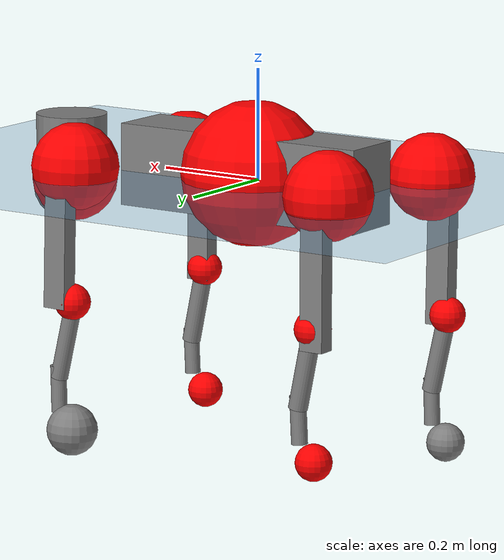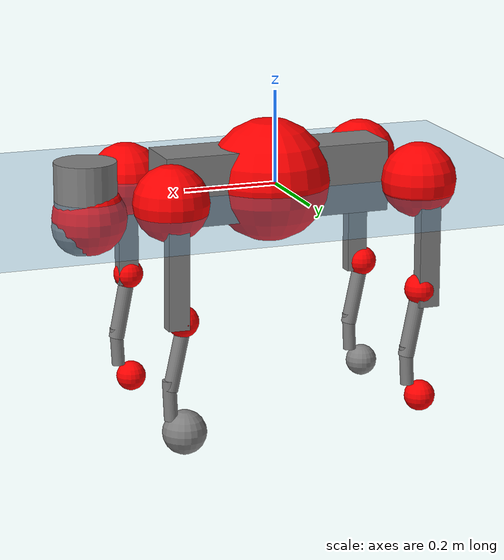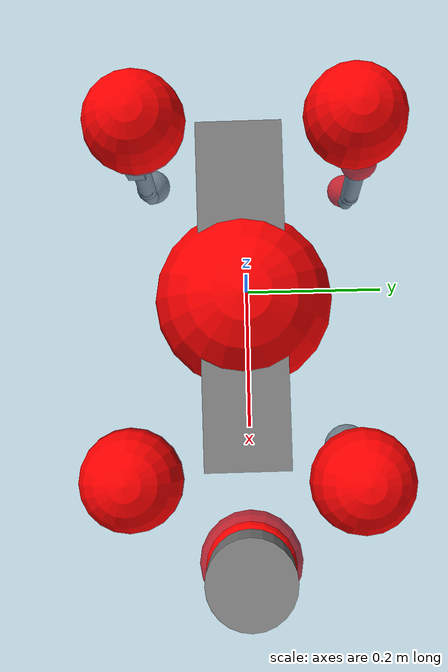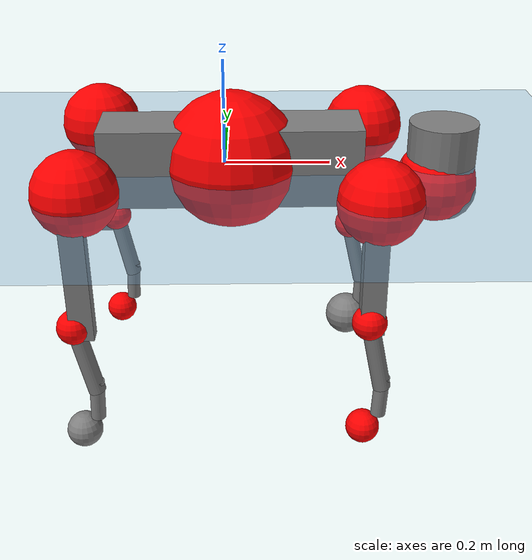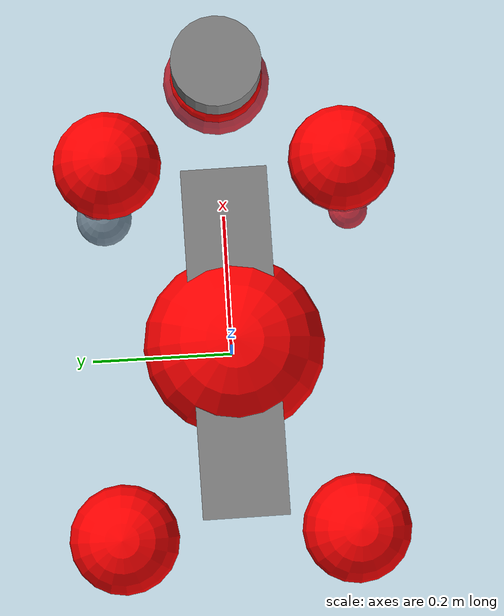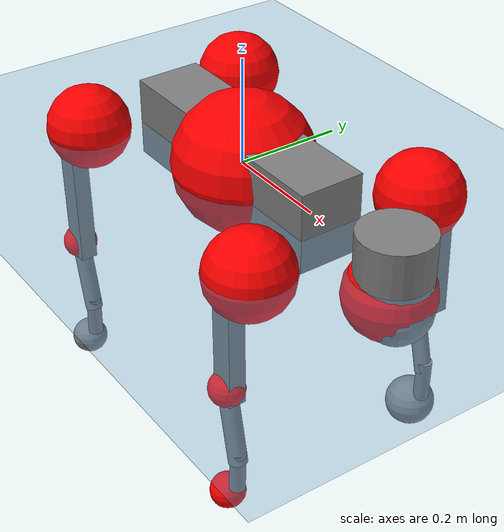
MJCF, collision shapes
<mujoco model="go2">
  <compiler angle="radian" assetdir="assets" balanceinertia="true" inertiafromgeom="false"/>

  <option timestep="0.005" density="1.2" viscosity="2e-05"/>

  <size nkey="1"/>

  <visual>
    <quality shadowsize="8192"/>
    <map shadowclip="0.5"/>
  </visual>

  <default>
    <default class="/">
      <geom contype="0" conaffinity="0" group="1" solref="-1000 -80"/>
      <site size="0.01 0.005 0.005" group="5"/>
      <general forcelimited="true" biastype="affine" gainprm="20" biasprm="0 -20 -0.5"/>
      <default class="go2">
        <joint armature="0.01" damping="0.01" frictionloss="0.2"/>
        <geom condim="1" margin="0.001"/>
        <default class="visual">
          <geom type="mesh" group="2"/>
        </default>
        <default class="collision">
          <geom group="3"/>
          <default class="foot">
            <geom size="0.022 0 0" condim="6" priority="1" friction="0.8 0.02 0.01" solimp="0.015 1 0.022"/>
          </default>
        </default>
        <default class="reward_collision_sphere">
          <geom group="5" rgba="1 0 0 1"/>
        </default>
      </default>
    </default>
  </default>

  <asset>
    <texture type="skybox" colorspace="auto" name="//unnamed_texture_0" builtin="gradient" rgb1="0.95 0.95 0.95" rgb2="0.95 0.95 0.95" width="100" height="600"/>
    <texture type="2d" colorspace="auto" name="texplane" builtin="checker" rgb1="0.345 0.575 0.748" rgb2="0.345 0.575 0.748" markrgb="1 1 1" width="512" height="512"/>
    <material name="MatPlane" class="/" texture="texplane" texuniform="true" texrepeat="2 2" specular="0.9"/>
    <material name="metal" class="/" rgba="0.9 0.95 0.95 1"/>
    <material name="black" class="/" rgba="0 0 0 1"/>
    <material name="white" class="/"/>
    <material name="gray" class="/" rgba="0.671705 0.692426 0.77427 1"/>
    <mesh name="base_0" class="/" file="base_0.obj"/>
    <mesh name="base_1" class="/" file="base_1.obj"/>
    <mesh name="base_2" class="/" file="base_2.obj"/>
    <mesh name="base_3" class="/" file="base_3.obj"/>
    <mesh name="base_4" class="/" file="base_4.obj"/>
    <mesh name="hip_0" class="/" file="hip_0.obj"/>
    <mesh name="hip_1" class="/" file="hip_1.obj"/>
    <mesh name="thigh_0" class="/" file="thigh_0.obj"/>
    <mesh name="thigh_1" class="/" file="thigh_1.obj"/>
    <mesh name="thigh_mirror_0" class="/" file="thigh_mirror_0.obj"/>
    <mesh name="thigh_mirror_1" class="/" file="thigh_mirror_1.obj"/>
    <mesh name="calf_0" class="/" file="calf_0.obj"/>
    <mesh name="calf_1" class="/" file="calf_1.obj"/>
    <mesh name="calf_mirror_0" class="/" file="calf_mirror_0.obj"/>
    <mesh name="calf_mirror_1" class="/" file="calf_mirror_1.obj"/>
    <mesh name="foot" class="/" file="foot.obj"/>
  </asset>

  <worldbody>
    <geom name="floor" class="/" size="100 100 0.125" type="plane" group="0" material="MatPlane"/>
    <light name="toplight_shadow" class="/" pos="0 0 5" dir="0.0990148 0.0990148 -0.990148" type="directional" ambient="0.04 0.04 0.04" diffuse="0.55 0.55 0.55" specular="0.12 0.12 0.12"/>
    <light name="toplight_fill" class="/" pos="0 0 5" dir="0.0990148 0.0990148 -0.990148" type="directional" castshadow="false" ambient="0.04 0.04 0.04" diffuse="0.3 0.3 0.3" specular="0.08 0.08 0.08"/>
    <body name="trunk" childclass="go2" pos="0.0123527 -0.00451589 0.0097495" quat="0.999984 0.00374175 -0.000329398 0.00423946">
      <inertial pos="0.0396804 -0.010245 -0.00831688" quat="-0.0121463 0.757469 0.0164847 0.65255" mass="13.8216" diaginertia="0.427103 0.548597 0.0284614"/>
      <joint name="//unnamed_joint_0" type="free" armature="0" damping="0" frictionloss="0"/>
      <geom name="//unnamed_geom_1" class="visual" material="black" mesh="base_0"/>
      <geom name="//unnamed_geom_2" class="visual" material="black" mesh="base_1"/>
      <geom name="//unnamed_geom_3" class="visual" material="black" mesh="base_2"/>
      <geom name="//unnamed_geom_4" class="visual" material="white" mesh="base_3"/>
      <geom name="//unnamed_geom_5" class="visual" material="gray" mesh="base_4"/>
      <geom name="trunk_1" class="collision" size="0.246139 0.0611748 0.0745875" type="box"/>
      <geom name="trunk_2" class="collision" size="0.0654276 0.0588848" pos="0.401428 0 0.0110333" type="cylinder"/>
      <geom name="trunk_3" class="collision" size="0.0615019" pos="0.412696 0 -0.0661995"/>
      <geom name="//unnamed_geom_9" class="reward_collision_sphere" size="0.130855"/>
      <geom name="//unnamed_geom_10" class="reward_collision_sphere" size="0.0785131" pos="0.394385 0 -0.0496496"/>
      <site name="imu" pos="-0.0878087 0.088082 0.0860057" size="0.0130855"/>
      <camera name="track" pos="0 -2.82763 0" quat="0.707107 0.707107 0 0" mode="trackcom"/>
      <camera name="ego_camera" pos="0.439458 0 0.0496496" quat="-0.5 -0.5 0.5 0.5"/>
      <body name="FL_hip" pos="0.270346 0.0675752 0.00787336" quat="0.999963 0.00591639 -0.00555088 -0.00285457">
        <inertial pos="0.00231466 -4.78146e-05 0.00641934" quat="0.54219 0.501106 0.497671 0.455243" mass="1.22235" diaginertia="0.00391879 0.00268053 0.000551653"/>
        <joint name="FL_hip_joint" pos="0 0 0" axis="0.998673 -0.0473107 -0.0203559" stiffness="0.0262938" range="-1.35735 1.0412" armature="0.00407004" damping="0" frictionloss="0.322935"/>
        <geom name="//unnamed_geom_11" class="visual" material="metal" mesh="hip_0"/>
        <geom name="//unnamed_geom_12" class="visual" material="gray" mesh="hip_1"/>
        <geom name="//unnamed_geom_13" class="collision" size="0.0601934 0.026171" pos="0 0.113105 0" quat="0.707107 0.707107 0 0" type="cylinder"/>
        <geom name="//unnamed_geom_14" class="reward_collision_sphere" size="0.0785131" pos="0 0.0989669 0"/>
        <body name="FL_thigh" pos="0.00120321 0.140659 0.00625016" quat="0.999999 2.61828e-06 -0.00147131 2.05185e-05">
          <inertial pos="-0.0027431 -0.0158857 -0.0184099" quat="0.845408 0.0687653 -0.0319934 0.528709" mass="2.65304" diaginertia="0.0298837 0.0359798 0.00129586"/>
          <joint name="FL_thigh_joint" pos="0 0 0" axis="0.0252935 0.99967 -0.00449918" range="-1.57808 3.15074" armature="0.0200886" damping="0.0975251" frictionloss="0.263383"/>
          <geom name="//unnamed_geom_15" class="visual" material="metal" mesh="thigh_0"/>
          <geom name="//unnamed_geom_16" class="visual" material="gray" mesh="thigh_1"/>
          <geom name="//unnamed_geom_17" class="collision" size="0.139361 0.0160298 0.0222454" pos="0 0 -0.117504" quat="0.707107 0 0.707107 0" type="box"/>
          <body name="FL_calf" pos="-0.0178183 -0.0164389 -0.247061" quat="1 -0.000152981 -0.0002255 -0.000412384">
            <inertial pos="0.0158195 0.0094776 -0.167917" quat="0.71043 0.00220134 -0.00403859 0.703752" mass="0.42638" diaginertia="0.00687001 0.00869524 8.49274e-05"/>
            <joint name="FL_calf_joint" pos="0 0 0" axis="0.00846378 0.99996 0.00293849" stiffness="0.0850658" range="-2.95802 -0.542742" armature="0.014316" damping="0.00784489" frictionloss="0.316424"/>
            <geom name="//unnamed_geom_18" class="visual" material="gray" mesh="calf_0"/>
            <geom name="//unnamed_geom_19" class="visual" material="black" mesh="calf_1"/>
            <geom name="FL_calf0" class="collision" size="0.0157026 0.0785131" pos="0.0112681 0 -0.0661995" quat="0.994493 0 -0.104807 0" type="cylinder"/>
            <geom name="//unnamed_geom_21" class="collision" size="0.0143941 0.0425279" pos="0.0281704 0 -0.163292" quat="0.999688 0 0.0249974 0" type="cylinder"/>
            <geom name="//unnamed_geom_22" class="visual" pos="0 0 -0.235008" quat="1 0 0 0" material="black" mesh="foot"/>
            <geom name="FL_foot" class="foot" size="0.0462904" pos="-0.00281704 0 -0.235008"/>
            <geom name="//unnamed_geom_24" class="reward_collision_sphere" size="0.0327138"/>
            <geom name="//unnamed_geom_25" class="reward_collision_sphere" size="0.0327138" pos="-0.00281704 0 -0.235008"/>
            <site name="FL_foot" class="foot" pos="-0.00281704 0 -0.235008" size="0.0130855"/>
          </body>
        </body>
      </body>
      <body name="FR_hip" pos="0.26294 -0.0756124 -0.0160412" quat="1 6.47028e-05 -0.000809483 -0.000538259">
        <inertial pos="-0.00108456 0.00916485 -0.00208213" quat="0.521113 0.444467 0.541957 0.487004" mass="1.2159" diaginertia="0.00439577 0.00239724 0.00058512"/>
        <joint name="FR_hip_joint" pos="0 0 0" axis="0.999964 0.00787868 -0.00313991" range="-1.30037 0.985633" armature="0.0137704" damping="0.00779443" frictionloss="0.162917"/>
        <geom name="//unnamed_geom_26" class="visual" pos="0 2.70484e-09 1.16016e-07" quat="4.63268e-05 1 0 0" material="metal" mesh="hip_0"/>
        <geom name="//unnamed_geom_27" class="visual" pos="0 4.38488e-09 -2.86953e-07" quat="4.63268e-05 1 0 0" material="gray" mesh="hip_1"/>
        <geom name="//unnamed_geom_28" class="collision" size="0.0601934 0.026171" pos="0 -0.113105 0" quat="0.707107 0.707107 0 0" type="cylinder"/>
        <geom name="//unnamed_geom_29" class="reward_collision_sphere" size="0.0785131" pos="0 -0.0989669 0"/>
        <body name="FR_thigh" pos="-0.00932471 -0.132901 0.0134513" quat="0.999994 -0.000186155 -0.000304213 0.00357734">
          <inertial pos="-0.00508137 0.0324339 -0.0197351" quat="0.589081 -0.0949279 0.0838798 0.798083" mass="1.87899" diaginertia="0.0296615 0.0262918 0.00114482"/>
          <joint name="FR_thigh_joint" pos="0 0 0" axis="-3.98574e-05 -1 -5.10455e-05" stiffness="0.0233849" range="-3.17003 1.30143" armature="0.0212451" damping="0.0214541" frictionloss="0.185121"/>
          <geom name="//unnamed_geom_30" class="visual" material="metal" mesh="thigh_mirror_0"/>
          <geom name="//unnamed_geom_31" class="visual" material="gray" mesh="thigh_mirror_1"/>
          <geom name="//unnamed_geom_32" class="collision" size="0.139361 0.0160298 0.0222454" pos="0 0 -0.117504" quat="0.707107 0 0.707107 0" type="box"/>
          <body name="FR_calf" pos="-0.00404686 -0.00334619 -0.236385" quat="1 -0.000247005 -7.83356e-05 0.000330923">
            <inertial pos="0.00355245 -0.00105655 -0.173994" quat="0.721447 0.0269894 0.0316561 0.691219" mass="0.771424" diaginertia="0.00903441 0.00791976 0.000126788"/>
            <joint name="FR_calf_joint" pos="0 0 0" axis="-0.0296121 -0.99938 -0.0190666" stiffness="0.0245031" range="0.805289 2.92363" armature="0.0049402" damping="0.0158441" frictionloss="0.251928"/>
            <geom name="//unnamed_geom_33" class="visual" material="gray" mesh="calf_mirror_0"/>
            <geom name="//unnamed_geom_34" class="visual" material="black" mesh="calf_mirror_1"/>
            <geom name="FR_calf0" class="collision" size="0.0170112 0.0785131" pos="0.0140852 0 -0.0661995" quat="0.995004 0 -0.0998334 0" type="cylinder"/>
            <geom name="//unnamed_geom_36" class="collision" size="0.0143941 0.0425279" pos="0.0281704 0 -0.163292" quat="0.999688 0 0.0249974 0" type="cylinder"/>
            <geom name="//unnamed_geom_37" class="visual" pos="0 0 -0.235008" quat="1 0 0 0" material="black" mesh="foot"/>
            <geom name="FR_foot" class="foot" size="0.0206466" pos="-0.00281704 0 -0.235008"/>
            <geom name="//unnamed_geom_39" class="reward_collision_sphere" size="0.0327138"/>
            <geom name="//unnamed_geom_40" class="reward_collision_sphere" size="0.0327138" pos="-0.00281704 0 -0.235008"/>
            <site name="FR_foot" class="foot" pos="-0.00281704 0 -0.235008" size="0.0130855"/>
          </body>
        </body>
      </body>
      <body name="RL_hip" pos="-0.267187 0.0751613 0.015654" quat="0.999999 -0.00140441 0.000301185 -0.000150562">
        <inertial pos="0.00638915 0.00600885 0.0152841" quat="0.496089 0.51551 0.487845 0.500152" mass="1.28897" diaginertia="0.004214 0.00406148 0.000791011"/>
        <joint name="RL_hip_joint" pos="0 0 0" axis="-0.999972 -0.00740226 -0.000832778" range="-1.39196 0.741434" armature="0.0120978" damping="0.0623017" frictionloss="0.0619562"/>
        <geom name="//unnamed_geom_41" class="visual" pos="-2.65871e-09 0 -5.21169e-07" quat="4.63268e-05 0 1 0" material="metal" mesh="hip_0"/>
        <geom name="//unnamed_geom_42" class="visual" pos="-4.31009e-09 0 -4.62202e-07" quat="4.63268e-05 0 1 0" material="gray" mesh="hip_1"/>
        <geom name="//unnamed_geom_43" class="collision" size="0.0601934 0.026171" pos="0 0.113105 0" quat="0.707107 0.707107 0 0" type="cylinder"/>
        <geom name="//unnamed_geom_44" class="reward_collision_sphere" size="0.0785131" pos="0 0.0989669 0"/>
        <body name="RL_thigh" pos="-0.00298461 0.141295 -0.0046179" quat="1 0.000103696 -0.000141882 -0.000122528">
          <inertial pos="0.00968211 -0.0364394 -0.0185231" quat="0.847586 0.134153 -0.0554786 0.510415" mass="2.45193" diaginertia="0.0353305 0.02869 0.00152967"/>
          <joint name="RL_thigh_joint" pos="0 0 0" axis="0.0628983 0.997227 0.0397842" stiffness="0.03718" range="-0.21961 4.64541" armature="0.00768377" damping="0" frictionloss="0.281893"/>
          <geom name="//unnamed_geom_45" class="visual" material="metal" mesh="thigh_0"/>
          <geom name="//unnamed_geom_46" class="visual" material="gray" mesh="thigh_1"/>
          <geom name="//unnamed_geom_47" class="collision" size="0.139361 0.0160298 0.0222454" pos="0 0 -0.117504" quat="0.707107 0 0.707107 0" type="box"/>
          <body name="RL_calf" pos="0.0110264 -0.00877694 -0.222147" quat="0.999999 -0.0004468 0.00121336 0.000258761">
            <inertial pos="-0.00162824 0.0100541 -0.167743" quat="0.704003 -0.00937446 -0.0711601 0.706561" mass="0.622319" diaginertia="0.0082253 0.00734017 9.44403e-05"/>
            <joint name="RL_calf_joint" pos="0 0 0" axis="-0.0384327 0.998763 -0.0315343" stiffness="0.0884735" range="-2.87392 -0.829291" armature="0.00944519" damping="0" frictionloss="0.12159"/>
            <geom name="//unnamed_geom_48" class="visual" material="gray" mesh="calf_0"/>
            <geom name="//unnamed_geom_49" class="visual" material="black" mesh="calf_1"/>
            <geom name="RL_calf0" class="collision" size="0.0170112 0.0785131" pos="0.0140852 0 -0.0661995" quat="0.995004 0 -0.0998334 0" type="cylinder"/>
            <geom name="//unnamed_geom_51" class="collision" size="0.0143941 0.0425279" pos="0.0281704 0 -0.163292" quat="0.999688 0 0.0249974 0" type="cylinder"/>
            <geom name="//unnamed_geom_52" class="visual" pos="0 0 -0.235008" quat="1 0 0 0" material="black" mesh="foot"/>
            <geom name="RL_foot" class="foot" size="0.0200052" pos="-0.00281704 0 -0.235008"/>
            <geom name="//unnamed_geom_54" class="reward_collision_sphere" size="0.0327138"/>
            <geom name="//unnamed_geom_55" class="reward_collision_sphere" size="0.0327138" pos="-0.00281704 0 -0.235008"/>
            <site name="RL_foot" class="foot" pos="-0.00281704 0 -0.235008" size="0.0130855"/>
          </body>
        </body>
      </body>
      <body name="RR_hip" pos="-0.27288 -0.0587298 -0.000568983" quat="0.999992 0.00321748 -0.00244289 3.03932e-05">
        <inertial pos="0.00579079 -0.0178067 0.0122094" quat="0.498505 0.499755 0.497961 0.503758" mass="1.63629" diaginertia="0.00631048 0.00435504 0.000956112"/>
        <joint name="RR_hip_joint" pos="0 0 0" axis="-0.999331 0.0145527 0.0335421" stiffness="0.0091309" range="-1.20809 1.32117" armature="0.019324" damping="0.0774979" frictionloss="0.159002"/>
        <geom name="//unnamed_geom_56" class="visual" pos="2.65889e-09 2.70484e-09 -6.37185e-07" quat="2.14617e-09 4.63268e-05 4.63268e-05 -1" material="metal" mesh="hip_0"/>
        <geom name="//unnamed_geom_57" class="visual" pos="4.30963e-09 4.38488e-09 -1.7525e-07" quat="2.14617e-09 4.63268e-05 4.63268e-05 -1" material="gray" mesh="hip_1"/>
        <geom name="//unnamed_geom_58" class="collision" size="0.0601934 0.026171" pos="0 -0.113105 0" quat="0.707107 0.707107 0 0" type="cylinder"/>
        <geom name="//unnamed_geom_59" class="reward_collision_sphere" size="0.0785131" pos="0 -0.0989669 0"/>
        <body name="RR_thigh" pos="-0.00535613 -0.13337 -0.0159863" quat="1 -3.1315e-05 -8.21755e-05 2.29464e-06">
          <inertial pos="0.00588719 0.0191166 -0.0360275" quat="0.55126 -0.0198566 0.0845738 0.829798" mass="3.55345" diaginertia="0.0343014 0.0405009 0.0013974"/>
          <joint name="RR_thigh_joint" pos="0 0 0" axis="0.00839215 -0.999206 0.0389514" range="-4.21801 0.220376" armature="0.011133" damping="0.00368686" frictionloss="0.444903"/>
          <geom name="//unnamed_geom_60" class="visual" material="metal" mesh="thigh_mirror_0"/>
          <geom name="//unnamed_geom_61" class="visual" material="gray" mesh="thigh_mirror_1"/>
          <geom name="//unnamed_geom_62" class="collision" size="0.139361 0.0160298 0.0222454" pos="0 0 -0.117504" quat="0.707107 0 0.707107 0" type="box"/>
          <body name="RR_calf" pos="-0.0162801 0.0028184 -0.237826" quat="0.999997 -0.000530418 -0.00179875 -0.00158192">
            <inertial pos="0.00118884 0.00121432 -0.155872" quat="0.692193 0.00775614 -0.0107777 0.72159" mass="0.720317" diaginertia="0.0101511 0.00989012 9.59909e-05"/>
            <joint name="RR_calf_joint" pos="0 0 0" axis="0.0364589 -0.99868 0.0361826" stiffness="0.0634923" range="0.89294 2.50987" armature="0.0186862" damping="0.0850639" frictionloss="0.281821"/>
            <geom name="//unnamed_geom_63" class="visual" material="gray" mesh="calf_mirror_0"/>
            <geom name="//unnamed_geom_64" class="visual" material="black" mesh="calf_mirror_1"/>
            <geom name="RR_calf0" class="collision" size="0.0170112 0.0785131" pos="0.0140852 0 -0.0661995" quat="0.995004 0 -0.0998334 0" type="cylinder"/>
            <geom name="//unnamed_geom_66" class="collision" size="0.0143941 0.0425279" pos="0.0281704 0 -0.163292" quat="0.999688 0 0.0249974 0" type="cylinder"/>
            <geom name="//unnamed_geom_67" class="visual" pos="0 0 -0.235008" quat="1 0 0 0" material="black" mesh="foot"/>
            <geom name="RR_foot" class="foot" size="0.0348159" pos="-0.00281704 0 -0.235008"/>
            <geom name="//unnamed_geom_69" class="reward_collision_sphere" size="0.0327138"/>
            <geom name="//unnamed_geom_70" class="reward_collision_sphere" size="0.0327138" pos="-0.00281704 0 -0.235008"/>
            <site name="RR_foot" class="foot" pos="-0.00281704 0 -0.235008" size="0.0130855"/>
          </body>
        </body>
      </body>
    </body>
  </worldbody>

  <contact>
    <pair class="/" geom1="floor" geom2="FL_foot" name="//unnamed_contact_0"/>
    <pair class="/" geom1="floor" geom2="FR_foot" name="//unnamed_contact_1"/>
    <pair class="/" geom1="floor" geom2="RL_foot" name="//unnamed_contact_2"/>
    <pair class="/" geom1="floor" geom2="RR_foot" name="//unnamed_contact_3"/>
  </contact>

  <actuator>
    <general name="FL_hip" class="/" joint="FL_hip_joint" forcerange="-25.1351 25.1351" gainprm="31.0756" biasprm="0 -31.0756 -0.410508"/>
    <general name="FL_thigh" class="/" joint="FL_thigh_joint" forcerange="-14.3909 14.3909" gainprm="31.0756" biasprm="0 -31.0756 -0.410508"/>
    <general name="FL_calf" class="/" joint="FL_calf_joint" forcerange="-93.8153 93.8153" gainprm="31.0756" biasprm="0 -31.0756 -0.410508"/>
    <general name="FR_hip" class="/" joint="FR_hip_joint" forcerange="-27.0523 27.0523" gainprm="31.0756" biasprm="0 -31.0756 -0.410508"/>
    <general name="FR_thigh" class="/" joint="FR_thigh_joint" forcerange="-18.2563 18.2563" gainprm="31.0756" biasprm="0 -31.0756 -0.410508"/>
    <general name="FR_calf" class="/" joint="FR_calf_joint" forcerange="-19.3132 19.3132" gainprm="31.0756" biasprm="0 -31.0756 -0.410508"/>
    <general name="RL_hip" class="/" joint="RL_hip_joint" forcerange="-12.8867 12.8867" gainprm="31.0756" biasprm="0 -31.0756 -0.410508"/>
    <general name="RL_thigh" class="/" joint="RL_thigh_joint" forcerange="-20.0595 20.0595" gainprm="31.0756" biasprm="0 -31.0756 -0.410508"/>
    <general name="RL_calf" class="/" joint="RL_calf_joint" forcerange="-56.5069 56.5069" gainprm="31.0756" biasprm="0 -31.0756 -0.410508"/>
    <general name="RR_hip" class="/" joint="RR_hip_joint" forcerange="-33.4286 33.4286" gainprm="31.0756" biasprm="0 -31.0756 -0.410508"/>
    <general name="RR_thigh" class="/" joint="RR_thigh_joint" forcerange="-51.0662 51.0662" gainprm="31.0756" biasprm="0 -31.0756 -0.410508"/>
    <general name="RR_calf" class="/" joint="RR_calf_joint" forcerange="-89.8152 89.8152" gainprm="31.0756" biasprm="0 -31.0756 -0.410508"/>
  </actuator>

  <sensor>
    <gyro site="imu" name="imu_angular_velocity"/>
    <velocimeter site="imu" name="imu_linear_velocity"/>
    <framelinvel objtype="site" objname="FL_foot" name="FL_foot_global_linear_velocity"/>
    <framelinvel objtype="site" objname="FR_foot" name="FR_foot_global_linear_velocity"/>
    <framelinvel objtype="site" objname="RL_foot" name="RL_foot_global_linear_velocity"/>
    <framelinvel objtype="site" objname="RR_foot" name="RR_foot_global_linear_velocity"/>
  </sensor>

  <keyframe>
    <key name="home" qpos="0 0 0.325 1 0 0 0 0.1 0.8 -1.5 -0.1 -0.8 1.5 -0.1 0.8 -1.5 0.1 -0.8 1.5"/>
  </keyframe>
</mujoco>
